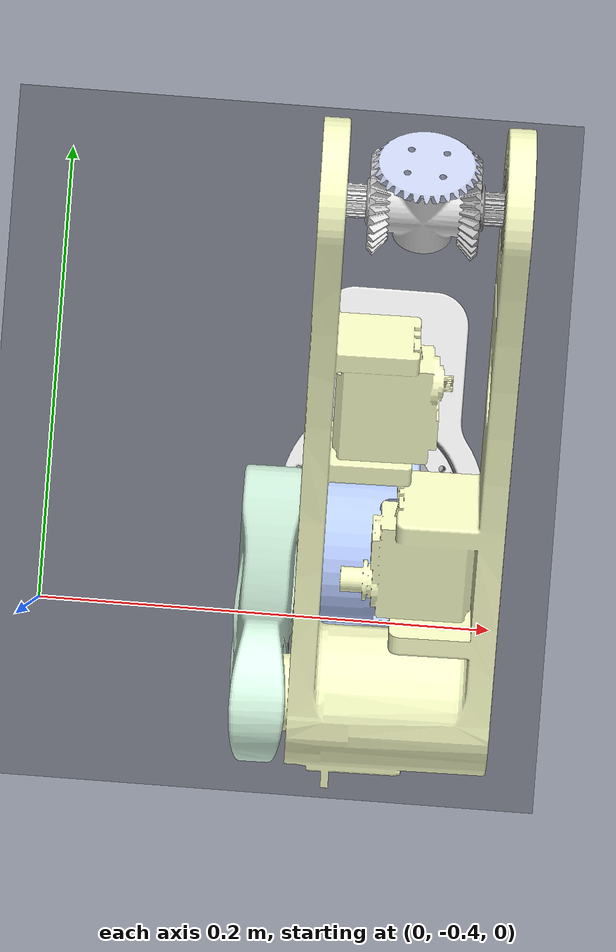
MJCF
<mujoco model="Robotic_Arm">
  <compiler angle="radian" meshdir="meshes/"/>
  <option gravity="0 0 0"/>

  <asset>
    <texture type="skybox" builtin="flat" rgb1="0.03 0.03 0.03" width="512" height="512"/>
    <texture name="grid" type="2d" builtin="checker" rgb1="0.04 0.04 0.04" rgb2="0.04 0.04 0.04" width="512" height="512" mark="edge" markrgb="0.75 0.65 0.95"/>
    <material name="grid_mat" texture="grid" texrepeat="12 12" reflectance="0.05" shininess="0.1"/>

    <mesh name="base_link" content_type="model/stl" file="base_link.STL"/>
    <mesh name="lowbase_link" content_type="model/stl" file="lowbase_link.STL"/>
    <mesh name="shoulder_link" content_type="model/stl" file="shoulder_link.STL"/>
    <mesh name="elbow_link" content_type="model/stl" file="elbow_link.STL"/>
    <mesh name="diffleft_link" content_type="model/stl" file="diffleft_link.STL"/>
    <mesh name="diffright_link" content_type="model/stl" file="diffright_link.STL"/>
    <mesh name="wristpitch_link" content_type="model/stl" file="wristpitch_link.STL"/>
    <mesh name="wristroll_link" content_type="model/stl" file="wristroll_link.STL"/>
  </asset>

  <worldbody>
    <light pos="0 0 3" dir="0 0 -1" directional="true" diffuse="0.65 0.65 0.65" specular="0.15 0.15 0.15"/>
    <geom name="floor" type="plane" size="2 2 0.05" material="grid_mat"/>

    <geom type="mesh" rgba="0.894118 0.894118 0.894118 1" mesh="base_link"/>
    <body name="lowbase_link" pos="0.146428 -0.345313 0.0226486">
      <inertial pos="-0.00103241 -0.031725 0.0555417" quat="0.936617 0.34937 0.0218527 -0.0145841" mass="0.200481" diaginertia="0.000192936 0.000173802 8.28951e-05"/>
      <joint name="Arm Base" pos="0 0 0" axis="0 0 -1"/>
      <geom type="mesh" rgba="0.717647 0.8 1 1" mesh="lowbase_link"/>
      <body name="shoulder_link" pos="-0.00292626 -0.0206842 0.082" quat="0.496677 -0.496677 -0.503301 0.503301">
        <inertial pos="-0.0200971 -0.0788273 0.0426036" quat="0.558361 0.434862 -0.553421 0.439151" mass="0.214666" diaginertia="0.00148512 0.0014407 6.35663e-05"/>
        <joint name="Arm_shoulder" pos="0 0 0" axis="0 0 1"/>
        <geom type="mesh" rgba="0.866667 1 0.913725 1" mesh="shoulder_link"/>
        <body name="elbow_link" pos="-0.0510685 -0.213991 0.03085">
          <inertial pos="0.0647009 -0.0399688 -0.0397338" quat="0.19615 0.703369 -0.189687 0.656366" mass="0.457257" diaginertia="0.00202696 0.00201312 0.000142186"/>
          <joint name="Arm_elbow" pos="0 0 0" axis="0 0 1"/>
          <geom type="mesh" rgba="0.980392 1 0.780392 1" mesh="elbow_link"/>
          <body name="diffleft_link" pos="0.187087 -0.115752 0" quat="0 0 0 -1">
            <inertial pos="-7.1082e-06 -2.51767e-06 -0.0145343" quat="0.408479 0.578004 -0.407323 0.577186" mass="0.0113875" diaginertia="1.33806e-06 7.83469e-07 7.83394e-07"/>
            <joint name="Arm_leftwrist" pos="0 0 0" axis="0 0 -1"/>
            <geom type="mesh" rgba="0.894118 0.894118 0.894118 1" mesh="diffleft_link"/>
          </body>
          <body name="diffright_link" pos="0.18709 -0.11575 -0.077706" quat="-3.67321e-06 1 0 0">
            <inertial pos="-2.13927e-06 -7.23097e-06 -0.014899" quat="0.101827 0.699939 -0.100425 0.699736" mass="0.0113875" diaginertia="1.33806e-06 7.83469e-07 7.83394e-07"/>
            <joint name="Arm_Rightwrist" pos="0 0 0" axis="0 0 1"/>
            <geom type="mesh" rgba="0.752941 0.752941 0.752941 1" mesh="diffright_link"/>
          </body>
          <body name="wristpitch_link" pos="0.18709 -0.11575 -0.077706" quat="-3.67321e-06 1 0 0">
            <inertial pos="0.00103659 0.000993681 -0.0395274" quat="0.277232 0.650546 -0.277285 0.65042" mass="0.00504446" diaginertia="4.88229e-07 4.74574e-07 4.71516e-07"/>
            <joint name="Arm_wristoutput" pos="0 0 0" axis="0 0 -1"/>
            <geom type="mesh" rgba="0.894118 0.894118 0.894118 1" mesh="wristpitch_link"/>
            <body name="wristroll_link" pos="0.014584 0.013981 -0.039203" quat="0.656102 -0.263681 0.656105 0.263682">
              <inertial pos="7.09141e-11 -1.74221e-11 -0.00322126" quat="0.5 0.5 -0.5 0.5" mass="0.00558888" diaginertia="7.6749e-07 4.12051e-07 4.12051e-07"/>
              <joint name="Arm_wristroll" pos="0 0 0" axis="0 0 -1"/>
              <geom type="mesh" rgba="0.792157 0.819608 0.933333 1" mesh="wristroll_link"/>
            </body>
          </body>
        </body>
      </body>
    </body>
  </worldbody>
</mujoco>
